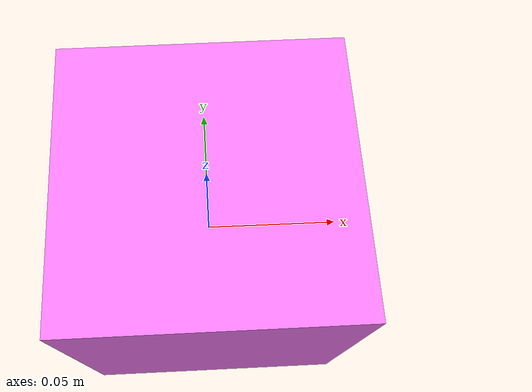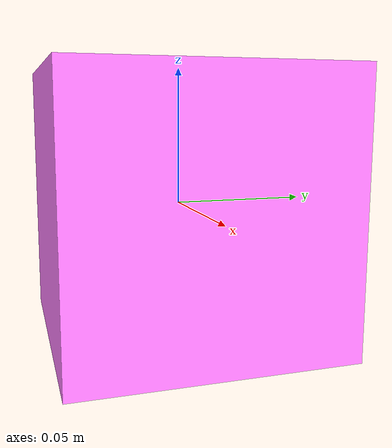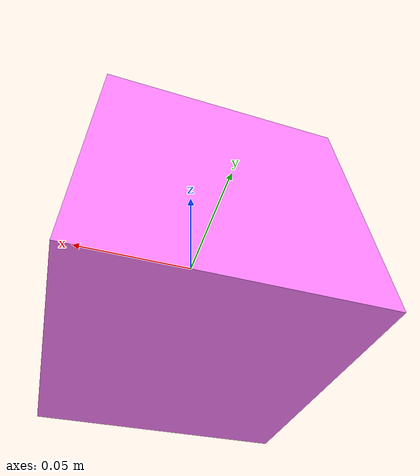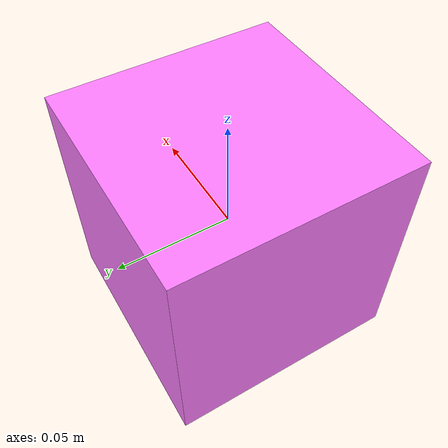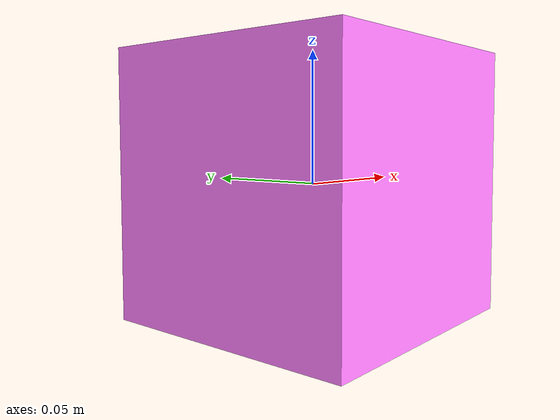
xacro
<?xml version='1.0'?>
<robot name="road" xmlns:xacro="http://www.ros.org/wiki/xacro">

	<xacro:property name="camera_link" value="0.05" /> <!-- Size of square 'camera' box -->

  	<link name="base_link">
		<visual>
        <origin xyz="0 0 0" rpy="0 0 0" />
      <geometry>
        <box size =".1 .1 .1"/>
      </geometry>
      <material name="transparent">
      	<color rgba = "1 .5 1 0"/>
      </material>
    </visual>

    <!-- Required to maintain the 3d model above the ground (when dynamic model) -->
    <collision>
        <origin xyz="0 0 0" rpy="0 0 0"/>
        <geometry>
          <box size =".1 .1 .1"/>
        </geometry>
      </collision>

    <!-- 3d model won't show up without inertial set-->
    <inertial>
        <origin xyz="0 0 0" rpy="0 0 0" />
        <inertia ixx="1.0" ixy="0" ixz="0"
                 iyy="1.0" iyz="0"
                 izz="1.0" />
        <mass value="100" />
      </inertial>
	</link>

	<!-- Camera -->
  <link name="camera_link">
    <collision>
      <origin xyz="0 0 0" rpy="0 0 0"/>
      <geometry>
    <box size="${camera_link} ${camera_link} ${camera_link}"/>
      </geometry>
    </collision>

    <visual>
      <origin xyz="0 0 0" rpy="0 0 0"/>
      <geometry>
    <box size="${camera_link} ${camera_link} ${camera_link}"/>
      </geometry>
      <material name="red"/>
    </visual>

    <inertial>
      <mass value="1e-5" />
      <origin xyz="0 0 0" rpy="0 0 0"/>
      <inertia ixx="1e-6" ixy="0" ixz="0" iyy="1e-6" iyz="0" izz="1e-6" />
    </inertial>
  </link>

  <joint name="camera_joint" type="fixed">
    <axis xyz="0 1 0" />
    <origin xyz="0 0 0" rpy="0 0 0"/>
    <parent link="base_link"/>
    <child link="camera_link"/>
  </joint>

  <!-- Set model as kinematic -->
  <gazebo>
      <static>true</static>
  </gazebo>

  <!-- camera -->
  <gazebo reference="camera_link">
    <sensor type="camera" name="free_object_camera">
      <update_rate>30.0</update_rate>
      <camera name="head">
        <horizontal_fov>1.3962634</horizontal_fov>
        <image>
          <width>800</width>
          <height>800</height>
          <format>R8G8B8</format>
        </image>
        <clip>
          <near>0.02</near>
          <far>300</far>
        </clip>
        <noise>
          <type>gaussian</type>
          <!-- Noise is sampled independently per pixel on each frame.
               That pixel's noise value is added to each of its color
               channels, which at that point lie in the range [0,1]. -->
          <mean>0.0</mean>
          <stddev>0.007</stddev>
        </noise>
      </camera>
      <plugin name="camera_controller" filename="libgazebo_ros_camera.so">
        <alwaysOn>true</alwaysOn>
        <updateRate>0.0</updateRate>
        <cameraName>inventacao_car/free_object_camera</cameraName>
        <imageTopicName>image_raw</imageTopicName>
        <cameraInfoTopicName>camera_info</cameraInfoTopicName>
        <frameName>camera_link</frameName>
        <hackBaseline>0.07</hackBaseline>
        <distortionK1>0.0</distortionK1>
        <distortionK2>0.0</distortionK2>
        <distortionK3>0.0</distortionK3>
        <distortionT1>0.0</distortionT1>
        <distortionT2>0.0</distortionT2>
      </plugin>
    </sensor>
  </gazebo>

</robot>
